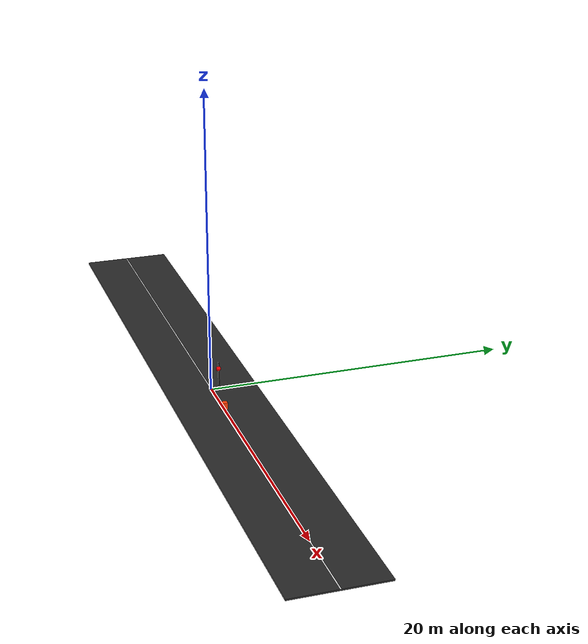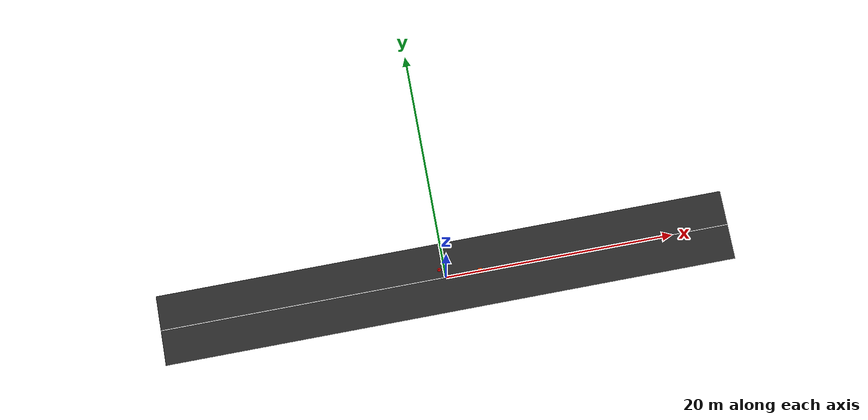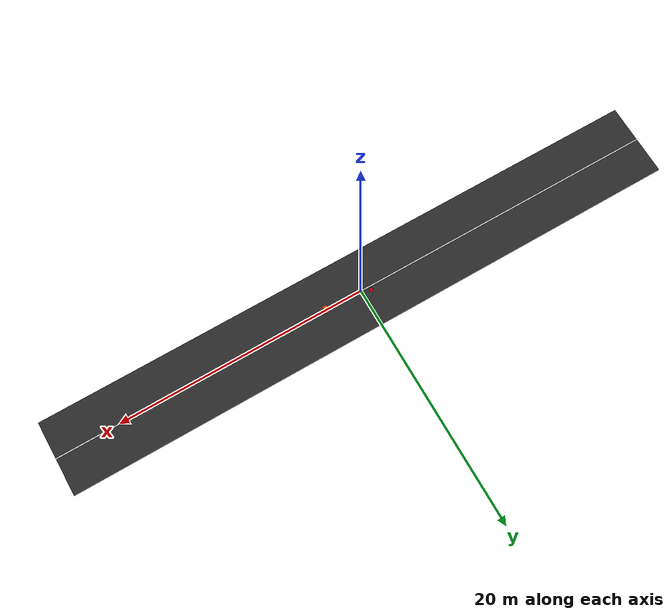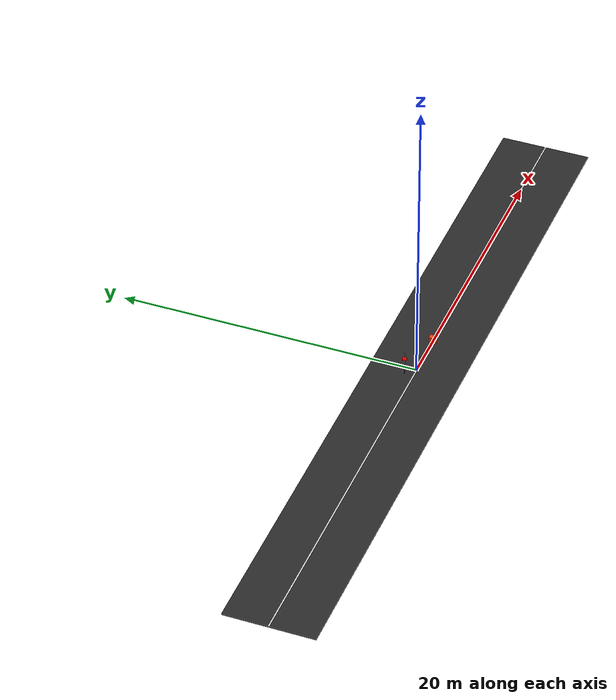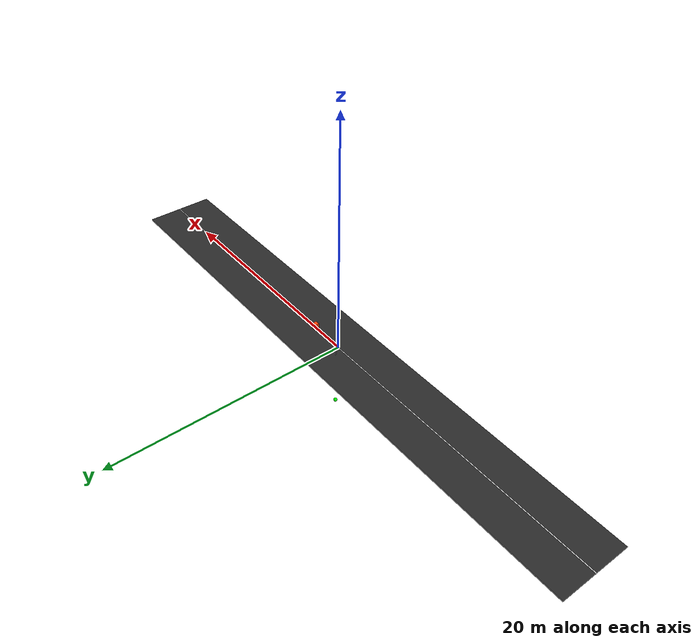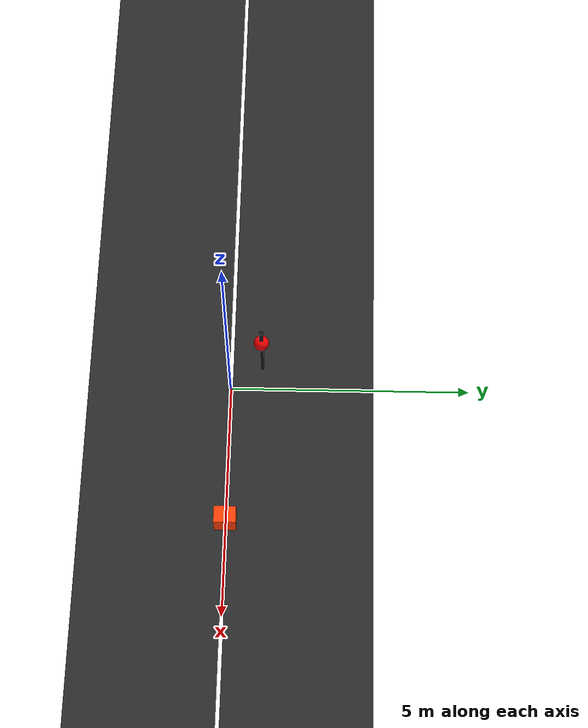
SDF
<?xml version="1.0"?>
<sdf version="1.6">
  <world name="camera_delivery">
    <plugin name="gazebo_ros_state" filename="libgazebo_ros_state.so">
      <ros>
        <namespace>/gazebo</namespace>
      </ros>
      <update_rate>30.0</update_rate>
    </plugin>

    <physics name="default_physics" default="1" type="ode">
      <max_step_size>0.005</max_step_size>
      <real_time_factor>1.0</real_time_factor>
      <real_time_update_rate>200</real_time_update_rate>
    </physics>

    <light name="sun" type="directional">
      <pose>0 0 10 0 0 0</pose>
      <direction>0 0 -1</direction>
      <diffuse>0.9 0.9 0.9 1</diffuse>
      <specular>0.2 0.2 0.2 1</specular>
      <attenuation>
        <range>100</range>
        <constant>0.9</constant>
        <linear>0.01</linear>
        <quadratic>0.001</quadratic>
      </attenuation>
    </light>

    <model name="track_surface">
      <static>true</static>
      <link name="surface">
        <collision name="collision">
          <geometry><box><size>50 6 0.1</size></box></geometry>
          <pose>0 0 -0.05 0 0 0</pose>
        </collision>
        <visual name="road">
          <geometry><box><size>50 6 0.1</size></box></geometry>
          <pose>0 0 -0.05 0 0 0</pose>
          <material>
            <ambient>0.12 0.12 0.12 1</ambient>
            <diffuse>0.16 0.16 0.16 1</diffuse>
          </material>
        </visual>
        <visual name="line">
          <geometry><box><size>50 0.08 0.006</size></box></geometry>
          <pose>0 0 0.003 0 0 0</pose>
          <material>
            <ambient>0.95 0.95 0.95 1</ambient>
            <diffuse>0.95 0.95 0.95 1</diffuse>
          </material>
        </visual>
      </link>
    </model>

    <model name="signal_post">
      <static>true</static>
      <pose>-0.5 0.65 0.8 0 0 0</pose>
      <link name="post">
        <visual name="post_visual">
          <geometry><box><size>0.08 0.08 1.6</size></box></geometry>
          <material>
            <ambient>0.08 0.08 0.08 1</ambient>
            <diffuse>0.08 0.08 0.08 1</diffuse>
          </material>
        </visual>
        <collision name="post_collision">
          <geometry><box><size>0.08 0.08 1.6</size></box></geometry>
        </collision>
      </link>
    </model>

    <model name="tl_red_on">
      <pose>-0.5 0.65 1.15 0 0 0</pose>
      <link name="lamp">
        <gravity>false</gravity>
        <inertial><mass>0.1</mass><inertia><ixx>0.001</ixx><iyy>0.001</iyy><izz>0.001</izz><ixy>0</ixy><ixz>0</ixz><iyz>0</iyz></inertia></inertial>
        <visual name="red_lamp">
          <geometry><sphere><radius>0.16</radius></sphere></geometry>
          <material><ambient>1 0 0 1</ambient><diffuse>1 0 0 1</diffuse><emissive>0.8 0 0 1</emissive></material>
        </visual>
      </link>
    </model>

    <model name="tl_green_on">
      <pose>-0.5 0.65 -5 0 0 0</pose>
      <link name="lamp">
        <gravity>false</gravity>
        <inertial><mass>0.1</mass><inertia><ixx>0.001</ixx><iyy>0.001</iyy><izz>0.001</izz><ixy>0</ixy><ixz>0</ixz><iyz>0</iyz></inertia></inertial>
        <visual name="green_lamp">
          <geometry><sphere><radius>0.16</radius></sphere></geometry>
          <material><ambient>0 1 0 1</ambient><diffuse>0 1 0 1</diffuse><emissive>0 0.8 0 1</emissive></material>
        </visual>
      </link>
    </model>

    <model name="orange_obstacle">
      <pose>3.0 0 0.22 0 0 0</pose>
      <link name="body">
        <inertial><mass>2</mass><inertia><ixx>0.03</ixx><iyy>0.03</iyy><izz>0.03</izz><ixy>0</ixy><ixz>0</ixz><iyz>0</iyz></inertia></inertial>
        <collision name="collision"><geometry><box><size>0.35 0.45 0.44</size></box></geometry></collision>
        <visual name="visual">
          <geometry><box><size>0.35 0.45 0.44</size></box></geometry>
          <material><ambient>1 0.24 0.02 1</ambient><diffuse>1 0.24 0.02 1</diffuse></material>
        </visual>
      </link>
    </model>
  </world>
</sdf>
